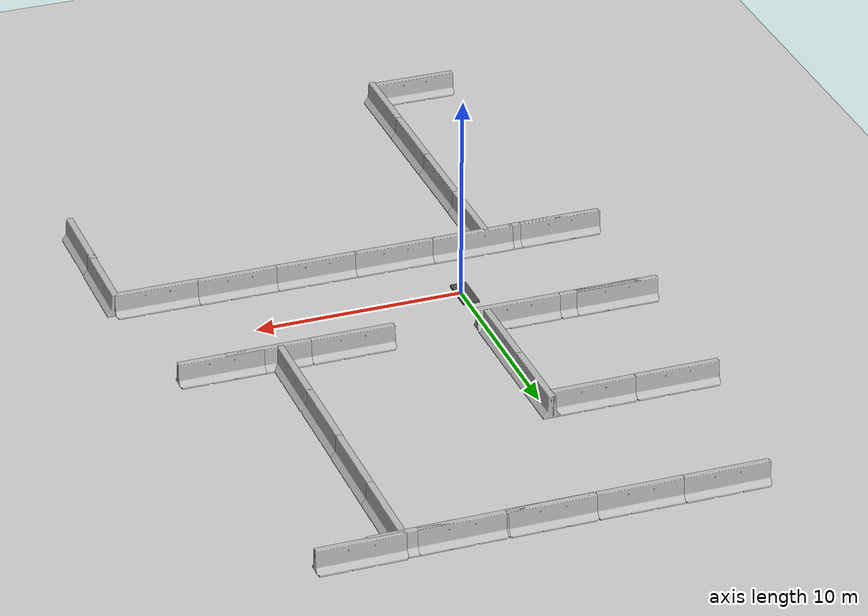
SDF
<sdf version="1.7">
 <world name="default">
  <model name="ground_plane">
   <static>1</static>
   <link name="link">
    <collision name="collision">
     <geometry><plane><normal>0 0 1</normal><size>100 100</size></plane></geometry>
     <surface><friction><ode><mu>100</mu><mu2>50</mu2></ode></friction></surface>
    </collision>
    <visual name="visual">
     <cast_shadows>0</cast_shadows>
     <geometry><plane><normal>0 0 1</normal><size>100 100</size></plane></geometry>
     <material>
      <script><uri>file://media/materials/scripts/gazebo.material</uri><name>Gazebo/Grey</name></script>
     </material>
    </visual>
   </link>
  </model>
  <model name="asphalt_plane">
   <static>1</static>
   <link name="link">
    <collision name="collision"><geometry><box><size>0.799213 1.82438 0.1</size></box></geometry></collision>
    <visual name="visual">
     <cast_shadows>0</cast_shadows>
     <geometry><box><size>0.799213 1.82438 0.1</size></box></geometry>
     <material>
      <script>
       <uri>model://asphalt_plane/materials/scripts</uri>
       <uri>model://asphalt_plane/materials/textures</uri>
       <name>vrc/asphalt</name>
      </script>
     </material>
    </visual>
   </link>
   <pose>-0.129245 0.109771 0 0 -0 0</pose>
  </model>
  <model name="jersey_barrier_clone">
   <static>1</static>
   <link name="link">
    <visual name="visual">
     <geometry><mesh><uri>model://jersey_barrier/meshes/jersey_barrier.dae</uri></mesh></geometry>
    </visual>
    <collision name="upright">
     <pose>0 0 0.5715 0 -0 0</pose>
     <geometry><box><size>4.06542 0.3063 1.143</size></box></geometry>
    </collision>
    <collision name="base">
     <pose>0 0 0.032258 0 -0 0</pose>
     <geometry><box><size>4.06542 0.8107 0.064516</size></box></geometry>
    </collision>
    <collision name="base2">
     <pose>0 0 0.1 0 -0 0</pose>
     <geometry><box><size>4.06542 0.65 0.1</size></box></geometry>
    </collision>
    <collision name="base3">
     <pose>0 0 0.2 0 -0 0</pose>
     <geometry><box><size>4.06542 0.5 0.1</size></box></geometry>
    </collision>
    <collision name="left-angle">
     <pose>0 -0.224 0.2401 0.9 -0 0</pose>
     <geometry><box><size>4.06542 0.5 0.064516</size></box></geometry>
    </collision>
    <collision name="right-angle">
     <pose>0 0.224 0.2401 -0.9 0 0</pose>
     <geometry><box><size>4.06542 0.5 0.064516</size></box></geometry>
    </collision>
   </link>
   <pose>-5.58054 -3.36857 0 0 -0 0</pose>
  </model>
  <model name="jersey_barrier_clone_0">
   <static>1</static>
   <link name="link">
    <visual name="visual">
     <geometry><mesh><uri>model://jersey_barrier/meshes/jersey_barrier.dae</uri></mesh></geometry>
    </visual>
    <collision name="upright">
     <pose>0 0 0.5715 0 -0 0</pose>
     <geometry><box><size>4.06542 0.3063 1.143</size></box></geometry>
    </collision>
    <collision name="base">
     <pose>0 0 0.032258 0 -0 0</pose>
     <geometry><box><size>4.06542 0.8107 0.064516</size></box></geometry>
    </collision>
    <collision name="base2">
     <pose>0 0 0.1 0 -0 0</pose>
     <geometry><box><size>4.06542 0.65 0.1</size></box></geometry>
    </collision>
    <collision name="base3">
     <pose>0 0 0.2 0 -0 0</pose>
     <geometry><box><size>4.06542 0.5 0.1</size></box></geometry>
    </collision>
    <collision name="left-angle">
     <pose>0 -0.224 0.2401 0.9 -0 0</pose>
     <geometry><box><size>4.06542 0.5 0.064516</size></box></geometry>
    </collision>
    <collision name="right-angle">
     <pose>0 0.224 0.2401 -0.9 0 0</pose>
     <geometry><box><size>4.06542 0.5 0.064516</size></box></geometry>
    </collision>
   </link>
   <pose>-1.76649 -3.34936 0 0 -0 0</pose>
  </model>
  <model name="jersey_barrier_clone_0_clone_1">
   <static>1</static>
   <link name="link">
    <visual name="visual">
     <geometry><mesh><uri>model://jersey_barrier/meshes/jersey_barrier.dae</uri></mesh></geometry>
    </visual>
    <collision name="upright">
     <pose>0 0 0.5715 0 -0 0</pose>
     <geometry><box><size>4.06542 0.3063 1.143</size></box></geometry>
    </collision>
    <collision name="base">
     <pose>0 0 0.032258 0 -0 0</pose>
     <geometry><box><size>4.06542 0.8107 0.064516</size></box></geometry>
    </collision>
    <collision name="base2">
     <pose>0 0 0.1 0 -0 0</pose>
     <geometry><box><size>4.06542 0.65 0.1</size></box></geometry>
    </collision>
    <collision name="base3">
     <pose>0 0 0.2 0 -0 0</pose>
     <geometry><box><size>4.06542 0.5 0.1</size></box></geometry>
    </collision>
    <collision name="left-angle">
     <pose>0 -0.224 0.2401 0.9 -0 0</pose>
     <geometry><box><size>4.06542 0.5 0.064516</size></box></geometry>
    </collision>
    <collision name="right-angle">
     <pose>0 0.224 0.2401 -0.9 0 0</pose>
     <geometry><box><size>4.06542 0.5 0.064516</size></box></geometry>
    </collision>
   </link>
   <pose>2.09018 -3.3606 0 0 -0 0</pose>
  </model>
  <model name="jersey_barrier_clone_0_clone_2">
   <static>1</static>
   <link name="link">
    <visual name="visual">
     <geometry><mesh><uri>model://jersey_barrier/meshes/jersey_barrier.dae</uri></mesh></geometry>
    </visual>
    <collision name="upright">
     <pose>0 0 0.5715 0 -0 0</pose>
     <geometry><box><size>4.06542 0.3063 1.143</size></box></geometry>
    </collision>
    <collision name="base">
     <pose>0 0 0.032258 0 -0 0</pose>
     <geometry><box><size>4.06542 0.8107 0.064516</size></box></geometry>
    </collision>
    <collision name="base2">
     <pose>0 0 0.1 0 -0 0</pose>
     <geometry><box><size>4.06542 0.65 0.1</size></box></geometry>
    </collision>
    <collision name="base3">
     <pose>0 0 0.2 0 -0 0</pose>
     <geometry><box><size>4.06542 0.5 0.1</size></box></geometry>
    </collision>
    <collision name="left-angle">
     <pose>0 -0.224 0.2401 0.9 -0 0</pose>
     <geometry><box><size>4.06542 0.5 0.064516</size></box></geometry>
    </collision>
    <collision name="right-angle">
     <pose>0 0.224 0.2401 -0.9 0 0</pose>
     <geometry><box><size>4.06542 0.5 0.064516</size></box></geometry>
    </collision>
   </link>
   <pose>5.95957 -3.36203 0 0 -0 0</pose>
  </model>
  <model name="jersey_barrier_clone_0_clone_3">
   <static>1</static>
   <link name="link">
    <visual name="visual">
     <geometry><mesh><uri>model://jersey_barrier/meshes/jersey_barrier.dae</uri></mesh></geometry>
    </visual>
    <collision name="upright">
     <pose>0 0 0.5715 0 -0 0</pose>
     <geometry><box><size>4.06542 0.3063 1.143</size></box></geometry>
    </collision>
    <collision name="base">
     <pose>0 0 0.032258 0 -0 0</pose>
     <geometry><box><size>4.06542 0.8107 0.064516</size></box></geometry>
    </collision>
    <collision name="base2">
     <pose>0 0 0.1 0 -0 0</pose>
     <geometry><box><size>4.06542 0.65 0.1</size></box></geometry>
    </collision>
    <collision name="base3">
     <pose>0 0 0.2 0 -0 0</pose>
     <geometry><box><size>4.06542 0.5 0.1</size></box></geometry>
    </collision>
    <collision name="left-angle">
     <pose>0 -0.224 0.2401 0.9 -0 0</pose>
     <geometry><box><size>4.06542 0.5 0.064516</size></box></geometry>
    </collision>
    <collision name="right-angle">
     <pose>0 0.224 0.2401 -0.9 0 0</pose>
     <geometry><box><size>4.06542 0.5 0.064516</size></box></geometry>
    </collision>
   </link>
   <pose>9.75739 -3.36455 0 0 -0 0</pose>
  </model>
  <model name="jersey_barrier_clone_0_clone_4">
   <static>1</static>
   <link name="link">
    <visual name="visual">
     <geometry><mesh><uri>model://jersey_barrier/meshes/jersey_barrier.dae</uri></mesh></geometry>
    </visual>
    <collision name="upright">
     <pose>0 0 0.5715 0 -0 0</pose>
     <geometry><box><size>4.06542 0.3063 1.143</size></box></geometry>
    </collision>
    <collision name="base">
     <pose>0 0 0.032258 0 -0 0</pose>
     <geometry><box><size>4.06542 0.8107 0.064516</size></box></geometry>
    </collision>
    <collision name="base2">
     <pose>0 0 0.1 0 -0 0</pose>
     <geometry><box><size>4.06542 0.65 0.1</size></box></geometry>
    </collision>
    <collision name="base3">
     <pose>0 0 0.2 0 -0 0</pose>
     <geometry><box><size>4.06542 0.5 0.1</size></box></geometry>
    </collision>
    <collision name="left-angle">
     <pose>0 -0.224 0.2401 0.9 -0 0</pose>
     <geometry><box><size>4.06542 0.5 0.064516</size></box></geometry>
    </collision>
    <collision name="right-angle">
     <pose>0 0.224 0.2401 -0.9 0 0</pose>
     <geometry><box><size>4.06542 0.5 0.064516</size></box></geometry>
    </collision>
   </link>
   <pose>13.7348 -3.39973 0 0 -0 0</pose>
  </model>
  <model name="jersey_barrier_clone_0_clone_0_clone_0_clone">
   <static>1</static>
   <link name="link">
    <visual name="visual">
     <geometry><mesh><uri>model://jersey_barrier/meshes/jersey_barrier.dae</uri></mesh></geometry>
    </visual>
    <collision name="upright">
     <pose>0 0 0.5715 0 -0 0</pose>
     <geometry><box><size>4.06542 0.3063 1.143</size></box></geometry>
    </collision>
    <collision name="base">
     <pose>0 0 0.032258 0 -0 0</pose>
     <geometry><box><size>4.06542 0.8107 0.064516</size></box></geometry>
    </collision>
    <collision name="base2">
     <pose>0 0 0.1 0 -0 0</pose>
     <geometry><box><size>4.06542 0.65 0.1</size></box></geometry>
    </collision>
    <collision name="base3">
     <pose>0 0 0.2 0 -0 0</pose>
     <geometry><box><size>4.06542 0.5 0.1</size></box></geometry>
    </collision>
    <collision name="left-angle">
     <pose>0 -0.224 0.2401 0.9 -0 0</pose>
     <geometry><box><size>4.06542 0.5 0.064516</size></box></geometry>
    </collision>
    <collision name="right-angle">
     <pose>0 0.224 0.2401 -0.9 0 0</pose>
     <geometry><box><size>4.06542 0.5 0.064516</size></box></geometry>
    </collision>
   </link>
   <pose>15.7344 -8.96603 0 0 0 -1.56339</pose>
  </model>
  <model name="jersey_barrier_clone_0_clone_0_clone_0_clone_0">
   <static>1</static>
   <link name="link">
    <visual name="visual">
     <geometry><mesh><uri>model://jersey_barrier/meshes/jersey_barrier.dae</uri></mesh></geometry>
    </visual>
    <collision name="upright">
     <pose>0 0 0.5715 0 -0 0</pose>
     <geometry><box><size>4.06542 0.3063 1.143</size></box></geometry>
    </collision>
    <collision name="base">
     <pose>0 0 0.032258 0 -0 0</pose>
     <geometry><box><size>4.06542 0.8107 0.064516</size></box></geometry>
    </collision>
    <collision name="base2">
     <pose>0 0 0.1 0 -0 0</pose>
     <geometry><box><size>4.06542 0.65 0.1</size></box></geometry>
    </collision>
    <collision name="base3">
     <pose>0 0 0.2 0 -0 0</pose>
     <geometry><box><size>4.06542 0.5 0.1</size></box></geometry>
    </collision>
    <collision name="left-angle">
     <pose>0 -0.224 0.2401 0.9 -0 0</pose>
     <geometry><box><size>4.06542 0.5 0.064516</size></box></geometry>
    </collision>
    <collision name="right-angle">
     <pose>0 0.224 0.2401 -0.9 0 0</pose>
     <geometry><box><size>4.06542 0.5 0.064516</size></box></geometry>
    </collision>
   </link>
   <pose>15.7362 -5.33956 0 0 0 -1.56339</pose>
  </model>
  <model name="jersey_barrier_clone_0_clone_4_clone_7_clone_3_clone">
   <static>1</static>
   <link name="link">
    <visual name="visual">
     <geometry><mesh><uri>model://jersey_barrier/meshes/jersey_barrier.dae</uri></mesh></geometry>
    </visual>
    <collision name="upright">
     <pose>0 0 0.5715 0 -0 0</pose>
     <geometry><box><size>4.06542 0.3063 1.143</size></box></geometry>
    </collision>
    <collision name="base">
     <pose>0 0 0.032258 0 -0 0</pose>
     <geometry><box><size>4.06542 0.8107 0.064516</size></box></geometry>
    </collision>
    <collision name="base2">
     <pose>0 0 0.1 0 -0 0</pose>
     <geometry><box><size>4.06542 0.65 0.1</size></box></geometry>
    </collision>
    <collision name="base3">
     <pose>0 0 0.2 0 -0 0</pose>
     <geometry><box><size>4.06542 0.5 0.1</size></box></geometry>
    </collision>
    <collision name="left-angle">
     <pose>0 -0.224 0.2401 0.9 -0 0</pose>
     <geometry><box><size>4.06542 0.5 0.064516</size></box></geometry>
    </collision>
    <collision name="right-angle">
     <pose>0 0.224 0.2401 -0.9 0 0</pose>
     <geometry><box><size>4.06542 0.5 0.064516</size></box></geometry>
    </collision>
   </link>
   <pose>12.7848 3.42094 0 0 -0 0</pose>
  </model>
  <model name="jersey_barrier_clone_0_clone_4_clone_7_clone_3_clone_clone">
   <static>1</static>
   <link name="link">
    <visual name="visual">
     <geometry><mesh><uri>model://jersey_barrier/meshes/jersey_barrier.dae</uri></mesh></geometry>
    </visual>
    <collision name="upright">
     <pose>0 0 0.5715 0 -0 0</pose>
     <geometry><box><size>4.06542 0.3063 1.143</size></box></geometry>
    </collision>
    <collision name="base">
     <pose>0 0 0.032258 0 -0 0</pose>
     <geometry><box><size>4.06542 0.8107 0.064516</size></box></geometry>
    </collision>
    <collision name="base2">
     <pose>0 0 0.1 0 -0 0</pose>
     <geometry><box><size>4.06542 0.65 0.1</size></box></geometry>
    </collision>
    <collision name="base3">
     <pose>0 0 0.2 0 -0 0</pose>
     <geometry><box><size>4.06542 0.5 0.1</size></box></geometry>
    </collision>
    <collision name="left-angle">
     <pose>0 -0.224 0.2401 0.9 -0 0</pose>
     <geometry><box><size>4.06542 0.5 0.064516</size></box></geometry>
    </collision>
    <collision name="right-angle">
     <pose>0 0.224 0.2401 -0.9 0 0</pose>
     <geometry><box><size>4.06542 0.5 0.064516</size></box></geometry>
    </collision>
   </link>
   <pose>10.5472 3.41426 0 0 -0 0</pose>
  </model>
  <model name="jersey_barrier_clone_0_clone_4_clone_7_clone_3_clone_clone_0">
   <static>1</static>
   <link name="link">
    <visual name="visual">
     <geometry><mesh><uri>model://jersey_barrier/meshes/jersey_barrier.dae</uri></mesh></geometry>
    </visual>
    <collision name="upright">
     <pose>0 0 0.5715 0 -0 0</pose>
     <geometry><box><size>4.06542 0.3063 1.143</size></box></geometry>
    </collision>
    <collision name="base">
     <pose>0 0 0.032258 0 -0 0</pose>
     <geometry><box><size>4.06542 0.8107 0.064516</size></box></geometry>
    </collision>
    <collision name="base2">
     <pose>0 0 0.1 0 -0 0</pose>
     <geometry><box><size>4.06542 0.65 0.1</size></box></geometry>
    </collision>
    <collision name="base3">
     <pose>0 0 0.2 0 -0 0</pose>
     <geometry><box><size>4.06542 0.5 0.1</size></box></geometry>
    </collision>
    <collision name="left-angle">
     <pose>0 -0.224 0.2401 0.9 -0 0</pose>
     <geometry><box><size>4.06542 0.5 0.064516</size></box></geometry>
    </collision>
    <collision name="right-angle">
     <pose>0 0.224 0.2401 -0.9 0 0</pose>
     <geometry><box><size>4.06542 0.5 0.064516</size></box></geometry>
    </collision>
   </link>
   <pose>6.54684 3.40747 0 0 -0 0</pose>
  </model>
  <model name="jersey_barrier_clone_0_clone_4_clone_7_clone_3_clone_clone_2">
   <static>1</static>
   <link name="link">
    <visual name="visual">
     <geometry><mesh><uri>model://jersey_barrier/meshes/jersey_barrier.dae</uri></mesh></geometry>
    </visual>
    <collision name="upright">
     <pose>0 0 0.5715 0 -0 0</pose>
     <geometry><box><size>4.06542 0.3063 1.143</size></box></geometry>
    </collision>
    <collision name="base">
     <pose>0 0 0.032258 0 -0 0</pose>
     <geometry><box><size>4.06542 0.8107 0.064516</size></box></geometry>
    </collision>
    <collision name="base2">
     <pose>0 0 0.1 0 -0 0</pose>
     <geometry><box><size>4.06542 0.65 0.1</size></box></geometry>
    </collision>
    <collision name="base3">
     <pose>0 0 0.2 0 -0 0</pose>
     <geometry><box><size>4.06542 0.5 0.1</size></box></geometry>
    </collision>
    <collision name="left-angle">
     <pose>0 -0.224 0.2401 0.9 -0 0</pose>
     <geometry><box><size>4.06542 0.5 0.064516</size></box></geometry>
    </collision>
    <collision name="right-angle">
     <pose>0 0.224 0.2401 -0.9 0 0</pose>
     <geometry><box><size>4.06542 0.5 0.064516</size></box></geometry>
    </collision>
   </link>
   <pose>-1.52166 3.39925 0 0 -0 0</pose>
  </model>
  <model name="jersey_barrier_clone_0_clone_4_clone_7_clone_3_clone_clone_3">
   <static>1</static>
   <link name="link">
    <visual name="visual">
     <geometry><mesh><uri>model://jersey_barrier/meshes/jersey_barrier.dae</uri></mesh></geometry>
    </visual>
    <collision name="upright">
     <pose>0 0 0.5715 0 -0 0</pose>
     <geometry><box><size>4.06542 0.3063 1.143</size></box></geometry>
    </collision>
    <collision name="base">
     <pose>0 0 0.032258 0 -0 0</pose>
     <geometry><box><size>4.06542 0.8107 0.064516</size></box></geometry>
    </collision>
    <collision name="base2">
     <pose>0 0 0.1 0 -0 0</pose>
     <geometry><box><size>4.06542 0.65 0.1</size></box></geometry>
    </collision>
    <collision name="base3">
     <pose>0 0 0.2 0 -0 0</pose>
     <geometry><box><size>4.06542 0.5 0.1</size></box></geometry>
    </collision>
    <collision name="left-angle">
     <pose>0 -0.224 0.2401 0.9 -0 0</pose>
     <geometry><box><size>4.06542 0.5 0.064516</size></box></geometry>
    </collision>
    <collision name="right-angle">
     <pose>0 0.224 0.2401 -0.9 0 0</pose>
     <geometry><box><size>4.06542 0.5 0.064516</size></box></geometry>
    </collision>
   </link>
   <pose>-5.54932 3.39943 0 0 -0 0</pose>
  </model>
  <model name="jersey_barrier_clone_0_clone_4_clone_7_clone_3_clone_clone_4">
   <static>1</static>
   <link name="link">
    <visual name="visual">
     <geometry><mesh><uri>model://jersey_barrier/meshes/jersey_barrier.dae</uri></mesh></geometry>
    </visual>
    <collision name="upright">
     <pose>0 0 0.5715 0 -0 0</pose>
     <geometry><box><size>4.06542 0.3063 1.143</size></box></geometry>
    </collision>
    <collision name="base">
     <pose>0 0 0.032258 0 -0 0</pose>
     <geometry><box><size>4.06542 0.8107 0.064516</size></box></geometry>
    </collision>
    <collision name="base2">
     <pose>0 0 0.1 0 -0 0</pose>
     <geometry><box><size>4.06542 0.65 0.1</size></box></geometry>
    </collision>
    <collision name="base3">
     <pose>0 0 0.2 0 -0 0</pose>
     <geometry><box><size>4.06542 0.5 0.1</size></box></geometry>
    </collision>
    <collision name="left-angle">
     <pose>0 -0.224 0.2401 0.9 -0 0</pose>
     <geometry><box><size>4.06542 0.5 0.064516</size></box></geometry>
    </collision>
    <collision name="right-angle">
     <pose>0 0.224 0.2401 -0.9 0 0</pose>
     <geometry><box><size>4.06542 0.5 0.064516</size></box></geometry>
    </collision>
   </link>
   <pose>-6.36641 3.4134 0 0 -0 0</pose>
  </model>
  <model name="jersey_barrier_clone_0_clone_0_clone_0_clone_0_clone_2_clone_clone_clone_clone">
   <static>1</static>
   <link name="link">
    <visual name="visual">
     <geometry><mesh><uri>model://jersey_barrier/meshes/jersey_barrier.dae</uri></mesh></geometry>
    </visual>
    <collision name="upright">
     <pose>0 0 0.5715 0 -0 0</pose>
     <geometry><box><size>4.06542 0.3063 1.143</size></box></geometry>
    </collision>
    <collision name="base">
     <pose>0 0 0.032258 0 -0 0</pose>
     <geometry><box><size>4.06542 0.8107 0.064516</size></box></geometry>
    </collision>
    <collision name="base2">
     <pose>0 0 0.1 0 -0 0</pose>
     <geometry><box><size>4.06542 0.65 0.1</size></box></geometry>
    </collision>
    <collision name="base3">
     <pose>0 0 0.2 0 -0 0</pose>
     <geometry><box><size>4.06542 0.5 0.1</size></box></geometry>
    </collision>
    <collision name="left-angle">
     <pose>0 -0.224 0.2401 0.9 -0 0</pose>
     <geometry><box><size>4.06542 0.5 0.064516</size></box></geometry>
    </collision>
    <collision name="right-angle">
     <pose>0 0.224 0.2401 -0.9 0 0</pose>
     <geometry><box><size>4.06542 0.5 0.064516</size></box></geometry>
    </collision>
   </link>
   <pose>9.97095 5.47957 0 0 0 -1.56339</pose>
  </model>
  <model name="jersey_barrier_clone_0_clone_0_clone_0_clone_0_clone_2_clone_clone_clone_clone_0">
   <static>1</static>
   <link name="link">
    <visual name="visual">
     <geometry><mesh><uri>model://jersey_barrier/meshes/jersey_barrier.dae</uri></mesh></geometry>
    </visual>
    <collision name="upright">
     <pose>0 0 0.5715 0 -0 0</pose>
     <geometry><box><size>4.06542 0.3063 1.143</size></box></geometry>
    </collision>
    <collision name="base">
     <pose>0 0 0.032258 0 -0 0</pose>
     <geometry><box><size>4.06542 0.8107 0.064516</size></box></geometry>
    </collision>
    <collision name="base2">
     <pose>0 0 0.1 0 -0 0</pose>
     <geometry><box><size>4.06542 0.65 0.1</size></box></geometry>
    </collision>
    <collision name="base3">
     <pose>0 0 0.2 0 -0 0</pose>
     <geometry><box><size>4.06542 0.5 0.1</size></box></geometry>
    </collision>
    <collision name="left-angle">
     <pose>0 -0.224 0.2401 0.9 -0 0</pose>
     <geometry><box><size>4.06542 0.5 0.064516</size></box></geometry>
    </collision>
    <collision name="right-angle">
     <pose>0 0.224 0.2401 -0.9 0 0</pose>
     <geometry><box><size>4.06542 0.5 0.064516</size></box></geometry>
    </collision>
   </link>
   <pose>9.93838 9.5245 0 0 0 -1.56339</pose>
  </model>
  <model name="jersey_barrier_clone_0_clone_0_clone_0_clone_0_clone_2_clone_clone_clone_clone_0_clone">
   <static>1</static>
   <link name="link">
    <visual name="visual">
     <geometry><mesh><uri>model://jersey_barrier/meshes/jersey_barrier.dae</uri></mesh></geometry>
    </visual>
    <collision name="upright">
     <pose>0 0 0.5715 0 -0 0</pose>
     <geometry><box><size>4.06542 0.3063 1.143</size></box></geometry>
    </collision>
    <collision name="base">
     <pose>0 0 0.032258 0 -0 0</pose>
     <geometry><box><size>4.06542 0.8107 0.064516</size></box></geometry>
    </collision>
    <collision name="base2">
     <pose>0 0 0.1 0 -0 0</pose>
     <geometry><box><size>4.06542 0.65 0.1</size></box></geometry>
    </collision>
    <collision name="base3">
     <pose>0 0 0.2 0 -0 0</pose>
     <geometry><box><size>4.06542 0.5 0.1</size></box></geometry>
    </collision>
    <collision name="left-angle">
     <pose>0 -0.224 0.2401 0.9 -0 0</pose>
     <geometry><box><size>4.06542 0.5 0.064516</size></box></geometry>
    </collision>
    <collision name="right-angle">
     <pose>0 0.224 0.2401 -0.9 0 0</pose>
     <geometry><box><size>4.06542 0.5 0.064516</size></box></geometry>
    </collision>
   </link>
   <pose>9.92295 13.5024 0 0 0 -1.56339</pose>
  </model>
  <model name="jersey_barrier_clone_0_clone_0_clone_0_clone_0_clone_2_clone_clone_clone_clone_0_clone_0">
   <static>1</static>
   <link name="link">
    <visual name="visual">
     <geometry><mesh><uri>model://jersey_barrier/meshes/jersey_barrier.dae</uri></mesh></geometry>
    </visual>
    <collision name="upright">
     <pose>0 0 0.5715 0 -0 0</pose>
     <geometry><box><size>4.06542 0.3063 1.143</size></box></geometry>
    </collision>
    <collision name="base">
     <pose>0 0 0.032258 0 -0 0</pose>
     <geometry><box><size>4.06542 0.8107 0.064516</size></box></geometry>
    </collision>
    <collision name="base2">
     <pose>0 0 0.1 0 -0 0</pose>
     <geometry><box><size>4.06542 0.65 0.1</size></box></geometry>
    </collision>
    <collision name="base3">
     <pose>0 0 0.2 0 -0 0</pose>
     <geometry><box><size>4.06542 0.5 0.1</size></box></geometry>
    </collision>
    <collision name="left-angle">
     <pose>0 -0.224 0.2401 0.9 -0 0</pose>
     <geometry><box><size>4.06542 0.5 0.064516</size></box></geometry>
    </collision>
    <collision name="right-angle">
     <pose>0 0.224 0.2401 -0.9 0 0</pose>
     <geometry><box><size>4.06542 0.5 0.064516</size></box></geometry>
    </collision>
   </link>
   <pose>9.89819 17.5051 0 0 0 -1.56339</pose>
  </model>
  <model name="jersey_barrier_clone_0_clone_4_clone_7_clone_2_clone_clone_clone">
   <static>1</static>
   <link name="link">
    <visual name="visual">
     <geometry><mesh><uri>model://jersey_barrier/meshes/jersey_barrier.dae</uri></mesh></geometry>
    </visual>
    <collision name="upright">
     <pose>0 0 0.5715 0 -0 0</pose>
     <geometry><box><size>4.06542 0.3063 1.143</size></box></geometry>
    </collision>
    <collision name="base">
     <pose>0 0 0.032258 0 -0 0</pose>
     <geometry><box><size>4.06542 0.8107 0.064516</size></box></geometry>
    </collision>
    <collision name="base2">
     <pose>0 0 0.1 0 -0 0</pose>
     <geometry><box><size>4.06542 0.65 0.1</size></box></geometry>
    </collision>
    <collision name="base3">
     <pose>0 0 0.2 0 -0 0</pose>
     <geometry><box><size>4.06542 0.5 0.1</size></box></geometry>
    </collision>
    <collision name="left-angle">
     <pose>0 -0.224 0.2401 0.9 -0 0</pose>
     <geometry><box><size>4.06542 0.5 0.064516</size></box></geometry>
    </collision>
    <collision name="right-angle">
     <pose>0 0.224 0.2401 -0.9 0 0</pose>
     <geometry><box><size>4.06542 0.5 0.064516</size></box></geometry>
    </collision>
   </link>
   <pose>11.7953 19.676 0 0 -0 0</pose>
  </model>
  <model name="jersey_barrier_clone_0_clone_0_clone_0_clone_0_clone_2_clone_clone_clone_clone_clone">
   <static>1</static>
   <link name="link">
    <visual name="visual">
     <geometry><mesh><uri>model://jersey_barrier/meshes/jersey_barrier.dae</uri></mesh></geometry>
    </visual>
    <collision name="upright">
     <pose>0 0 0.5715 0 -0 0</pose>
     <geometry><box><size>4.06542 0.3063 1.143</size></box></geometry>
    </collision>
    <collision name="base">
     <pose>0 0 0.032258 0 -0 0</pose>
     <geometry><box><size>4.06542 0.8107 0.064516</size></box></geometry>
    </collision>
    <collision name="base2">
     <pose>0 0 0.1 0 -0 0</pose>
     <geometry><box><size>4.06542 0.65 0.1</size></box></geometry>
    </collision>
    <collision name="base3">
     <pose>0 0 0.2 0 -0 0</pose>
     <geometry><box><size>4.06542 0.5 0.1</size></box></geometry>
    </collision>
    <collision name="left-angle">
     <pose>0 -0.224 0.2401 0.9 -0 0</pose>
     <geometry><box><size>4.06542 0.5 0.064516</size></box></geometry>
    </collision>
    <collision name="right-angle">
     <pose>0 0.224 0.2401 -0.9 0 0</pose>
     <geometry><box><size>4.06542 0.5 0.064516</size></box></geometry>
    </collision>
   </link>
   <pose>-2.43372 -5.32735 0 0 0 -1.56339</pose>
  </model>
  <model name="jersey_barrier_clone_0_clone_0_clone_0_clone_0_clone_2_clone_clone_clone_clone_clone_0">
   <static>1</static>
   <link name="link">
    <visual name="visual">
     <geometry><mesh><uri>model://jersey_barrier/meshes/jersey_barrier.dae</uri></mesh></geometry>
    </visual>
    <collision name="upright">
     <pose>0 0 0.5715 0 -0 0</pose>
     <geometry><box><size>4.06542 0.3063 1.143</size></box></geometry>
    </collision>
    <collision name="base">
     <pose>0 0 0.032258 0 -0 0</pose>
     <geometry><box><size>4.06542 0.8107 0.064516</size></box></geometry>
    </collision>
    <collision name="base2">
     <pose>0 0 0.1 0 -0 0</pose>
     <geometry><box><size>4.06542 0.65 0.1</size></box></geometry>
    </collision>
    <collision name="base3">
     <pose>0 0 0.2 0 -0 0</pose>
     <geometry><box><size>4.06542 0.5 0.1</size></box></geometry>
    </collision>
    <collision name="left-angle">
     <pose>0 -0.224 0.2401 0.9 -0 0</pose>
     <geometry><box><size>4.06542 0.5 0.064516</size></box></geometry>
    </collision>
    <collision name="right-angle">
     <pose>0 0.224 0.2401 -0.9 0 0</pose>
     <geometry><box><size>4.06542 0.5 0.064516</size></box></geometry>
    </collision>
   </link>
   <pose>-2.4129 -9.31924 0 0 0 -1.56339</pose>
  </model>
  <model name="jersey_barrier_clone_0_clone_0_clone_0_clone_0_clone_2_clone_clone_clone_clone_clone_1">
   <static>1</static>
   <link name="link">
    <visual name="visual">
     <geometry><mesh><uri>model://jersey_barrier/meshes/jersey_barrier.dae</uri></mesh></geometry>
    </visual>
    <collision name="upright">
     <pose>0 0 0.5715 0 -0 0</pose>
     <geometry><box><size>4.06542 0.3063 1.143</size></box></geometry>
    </collision>
    <collision name="base">
     <pose>0 0 0.032258 0 -0 0</pose>
     <geometry><box><size>4.06542 0.8107 0.064516</size></box></geometry>
    </collision>
    <collision name="base2">
     <pose>0 0 0.1 0 -0 0</pose>
     <geometry><box><size>4.06542 0.65 0.1</size></box></geometry>
    </collision>
    <collision name="base3">
     <pose>0 0 0.2 0 -0 0</pose>
     <geometry><box><size>4.06542 0.5 0.1</size></box></geometry>
    </collision>
    <collision name="left-angle">
     <pose>0 -0.224 0.2401 0.9 -0 0</pose>
     <geometry><box><size>4.06542 0.5 0.064516</size></box></geometry>
    </collision>
    <collision name="right-angle">
     <pose>0 0.224 0.2401 -0.9 0 0</pose>
     <geometry><box><size>4.06542 0.5 0.064516</size></box></geometry>
    </collision>
   </link>
   <pose>-2.38212 -13.2949 0 0 0 -1.56339</pose>
  </model>
  <model name="jersey_barrier_clone_0_clone_0_clone_0_clone_0_clone_2_clone_clone_clone_clone_clone_2">
   <static>1</static>
   <link name="link">
    <visual name="visual">
     <geometry><mesh><uri>model://jersey_barrier/meshes/jersey_barrier.dae</uri></mesh></geometry>
    </visual>
    <collision name="upright">
     <pose>0 0 0.5715 0 -0 0</pose>
     <geometry><box><size>4.06542 0.3063 1.143</size></box></geometry>
    </collision>
    <collision name="base">
     <pose>0 0 0.032258 0 -0 0</pose>
     <geometry><box><size>4.06542 0.8107 0.064516</size></box></geometry>
    </collision>
    <collision name="base2">
     <pose>0 0 0.1 0 -0 0</pose>
     <geometry><box><size>4.06542 0.65 0.1</size></box></geometry>
    </collision>
    <collision name="base3">
     <pose>0 0 0.2 0 -0 0</pose>
     <geometry><box><size>4.06542 0.5 0.1</size></box></geometry>
    </collision>
    <collision name="left-angle">
     <pose>0 -0.224 0.2401 0.9 -0 0</pose>
     <geometry><box><size>4.06542 0.5 0.064516</size></box></geometry>
    </collision>
    <collision name="right-angle">
     <pose>0 0.224 0.2401 -0.9 0 0</pose>
     <geometry><box><size>4.06542 0.5 0.064516</size></box></geometry>
    </collision>
   </link>
   <pose>-2.35235 -17.2891 0 0 0 -1.56339</pose>
  </model>
  <model name="jersey_barrier_clone_clone">
   <static>1</static>
   <link name="link">
    <visual name="visual">
     <geometry><mesh><uri>model://jersey_barrier/meshes/jersey_barrier.dae</uri></mesh></geometry>
    </visual>
    <collision name="upright">
     <pose>0 0 0.5715 0 -0 0</pose>
     <geometry><box><size>4.06542 0.3063 1.143</size></box></geometry>
    </collision>
    <collision name="base">
     <pose>0 0 0.032258 0 -0 0</pose>
     <geometry><box><size>4.06542 0.8107 0.064516</size></box></geometry>
    </collision>
    <collision name="base2">
     <pose>0 0 0.1 0 -0 0</pose>
     <geometry><box><size>4.06542 0.65 0.1</size></box></geometry>
    </collision>
    <collision name="base3">
     <pose>0 0 0.2 0 -0 0</pose>
     <geometry><box><size>4.06542 0.5 0.1</size></box></geometry>
    </collision>
    <collision name="left-angle">
     <pose>0 -0.224 0.2401 0.9 -0 0</pose>
     <geometry><box><size>4.06542 0.5 0.064516</size></box></geometry>
    </collision>
    <collision name="right-angle">
     <pose>0 0.224 0.2401 -0.9 0 0</pose>
     <geometry><box><size>4.06542 0.5 0.064516</size></box></geometry>
    </collision>
   </link>
   <pose>-4.49564 -19.0317 0 0 -0 0</pose>
  </model>
  <model name="jersey_barrier_clone_2_clone_0">
   <static>1</static>
   <link name="link">
    <visual name="visual">
     <geometry><mesh><uri>model://jersey_barrier/meshes/jersey_barrier.dae</uri></mesh></geometry>
    </visual>
    <collision name="upright">
     <pose>0 0 0.5715 0 -0 0</pose>
     <geometry><box><size>4.06542 0.3063 1.143</size></box></geometry>
    </collision>
    <collision name="base">
     <pose>0 0 0.032258 0 -0 0</pose>
     <geometry><box><size>4.06542 0.8107 0.064516</size></box></geometry>
    </collision>
    <collision name="base2">
     <pose>0 0 0.1 0 -0 0</pose>
     <geometry><box><size>4.06542 0.65 0.1</size></box></geometry>
    </collision>
    <collision name="base3">
     <pose>0 0 0.2 0 -0 0</pose>
     <geometry><box><size>4.06542 0.5 0.1</size></box></geometry>
    </collision>
    <collision name="left-angle">
     <pose>0 -0.224 0.2401 0.9 -0 0</pose>
     <geometry><box><size>4.06542 0.5 0.064516</size></box></geometry>
    </collision>
    <collision name="right-angle">
     <pose>0 0.224 0.2401 -0.9 0 0</pose>
     <geometry><box><size>4.06542 0.5 0.064516</size></box></geometry>
    </collision>
   </link>
   <pose>-6.17641 -3.36808 0 0 -0 0</pose>
  </model>
  <model name="jersey_barrier_clone_0_clone_4_clone_7_clone_2_clone_clone_clone_clone_2">
   <static>1</static>
   <link name="link">
    <visual name="visual">
     <geometry><mesh><uri>model://jersey_barrier/meshes/jersey_barrier.dae</uri></mesh></geometry>
    </visual>
    <collision name="upright">
     <pose>0 0 0.5715 0 -0 0</pose>
     <geometry><box><size>4.06542 0.3063 1.143</size></box></geometry>
    </collision>
    <collision name="base">
     <pose>0 0 0.032258 0 -0 0</pose>
     <geometry><box><size>4.06542 0.8107 0.064516</size></box></geometry>
    </collision>
    <collision name="base2">
     <pose>0 0 0.1 0 -0 0</pose>
     <geometry><box><size>4.06542 0.65 0.1</size></box></geometry>
    </collision>
    <collision name="base3">
     <pose>0 0 0.2 0 -0 0</pose>
     <geometry><box><size>4.06542 0.5 0.1</size></box></geometry>
    </collision>
    <collision name="left-angle">
     <pose>0 -0.224 0.2401 0.9 -0 0</pose>
     <geometry><box><size>4.06542 0.5 0.064516</size></box></geometry>
    </collision>
    <collision name="right-angle">
     <pose>0 0.224 0.2401 -0.9 0 0</pose>
     <geometry><box><size>4.06542 0.5 0.064516</size></box></geometry>
    </collision>
   </link>
   <pose>-4.91091 19.6269 0 0 -0 0</pose>
  </model>
  <model name="jersey_barrier_clone_0_clone_4_clone_7_clone_2_clone_clone_clone_clone_3">
   <static>1</static>
   <link name="link">
    <visual name="visual">
     <geometry><mesh><uri>model://jersey_barrier/meshes/jersey_barrier.dae</uri></mesh></geometry>
    </visual>
    <collision name="upright">
     <pose>0 0 0.5715 0 -0 0</pose>
     <geometry><box><size>4.06542 0.3063 1.143</size></box></geometry>
    </collision>
    <collision name="base">
     <pose>0 0 0.032258 0 -0 0</pose>
     <geometry><box><size>4.06542 0.8107 0.064516</size></box></geometry>
    </collision>
    <collision name="base2">
     <pose>0 0 0.1 0 -0 0</pose>
     <geometry><box><size>4.06542 0.65 0.1</size></box></geometry>
    </collision>
    <collision name="base3">
     <pose>0 0 0.2 0 -0 0</pose>
     <geometry><box><size>4.06542 0.5 0.1</size></box></geometry>
    </collision>
    <collision name="left-angle">
     <pose>0 -0.224 0.2401 0.9 -0 0</pose>
     <geometry><box><size>4.06542 0.5 0.064516</size></box></geometry>
    </collision>
    <collision name="right-angle">
     <pose>0 0.224 0.2401 -0.9 0 0</pose>
     <geometry><box><size>4.06542 0.5 0.064516</size></box></geometry>
    </collision>
   </link>
   <pose>-0.896923 19.6024 0 0 -0 0</pose>
  </model>
  <model name="jersey_barrier_clone_0_clone_4_clone_7_clone_2_clone_clone_clone_clone_4">
   <static>1</static>
   <link name="link">
    <visual name="visual">
     <geometry><mesh><uri>model://jersey_barrier/meshes/jersey_barrier.dae</uri></mesh></geometry>
    </visual>
    <collision name="upright">
     <pose>0 0 0.5715 0 -0 0</pose>
     <geometry><box><size>4.06542 0.3063 1.143</size></box></geometry>
    </collision>
    <collision name="base">
     <pose>0 0 0.032258 0 -0 0</pose>
     <geometry><box><size>4.06542 0.8107 0.064516</size></box></geometry>
    </collision>
    <collision name="base2">
     <pose>0 0 0.1 0 -0 0</pose>
     <geometry><box><size>4.06542 0.65 0.1</size></box></geometry>
    </collision>
    <collision name="base3">
     <pose>0 0 0.2 0 -0 0</pose>
     <geometry><box><size>4.06542 0.5 0.1</size></box></geometry>
    </collision>
    <collision name="left-angle">
     <pose>0 -0.224 0.2401 0.9 -0 0</pose>
     <geometry><box><size>4.06542 0.5 0.064516</size></box></geometry>
    </collision>
    <collision name="right-angle">
     <pose>0 0.224 0.2401 -0.9 0 0</pose>
     <geometry><box><size>4.06542 0.5 0.064516</size></box></geometry>
    </collision>
   </link>
   <pose>3.13782 19.6144 0 0 -0 0</pose>
  </model>
  <model name="jersey_barrier_clone_0_clone_4_clone_7_clone_2_clone_clone_clone_clone_5">
   <static>1</static>
   <link name="link">
    <visual name="visual">
     <geometry><mesh><uri>model://jersey_barrier/meshes/jersey_barrier.dae</uri></mesh></geometry>
    </visual>
    <collision name="upright">
     <pose>0 0 0.5715 0 -0 0</pose>
     <geometry><box><size>4.06542 0.3063 1.143</size></box></geometry>
    </collision>
    <collision name="base">
     <pose>0 0 0.032258 0 -0 0</pose>
     <geometry><box><size>4.06542 0.8107 0.064516</size></box></geometry>
    </collision>
    <collision name="base2">
     <pose>0 0 0.1 0 -0 0</pose>
     <geometry><box><size>4.06542 0.65 0.1</size></box></geometry>
    </collision>
    <collision name="base3">
     <pose>0 0 0.2 0 -0 0</pose>
     <geometry><box><size>4.06542 0.5 0.1</size></box></geometry>
    </collision>
    <collision name="left-angle">
     <pose>0 -0.224 0.2401 0.9 -0 0</pose>
     <geometry><box><size>4.06542 0.5 0.064516</size></box></geometry>
    </collision>
    <collision name="right-angle">
     <pose>0 0.224 0.2401 -0.9 0 0</pose>
     <geometry><box><size>4.06542 0.5 0.064516</size></box></geometry>
    </collision>
   </link>
   <pose>3.21948 19.5907 0 0 -0 0</pose>
  </model>
  <model name="jersey_barrier_clone_0_clone_4_clone_7_clone_2_clone_clone_clone_clone_6">
   <static>1</static>
   <link name="link">
    <visual name="visual">
     <geometry><mesh><uri>model://jersey_barrier/meshes/jersey_barrier.dae</uri></mesh></geometry>
    </visual>
    <collision name="upright">
     <pose>0 0 0.5715 0 -0 0</pose>
     <geometry><box><size>4.06542 0.3063 1.143</size></box></geometry>
    </collision>
    <collision name="base">
     <pose>0 0 0.032258 0 -0 0</pose>
     <geometry><box><size>4.06542 0.8107 0.064516</size></box></geometry>
    </collision>
    <collision name="base2">
     <pose>0 0 0.1 0 -0 0</pose>
     <geometry><box><size>4.06542 0.65 0.1</size></box></geometry>
    </collision>
    <collision name="base3">
     <pose>0 0 0.2 0 -0 0</pose>
     <geometry><box><size>4.06542 0.5 0.1</size></box></geometry>
    </collision>
    <collision name="left-angle">
     <pose>0 -0.224 0.2401 0.9 -0 0</pose>
     <geometry><box><size>4.06542 0.5 0.064516</size></box></geometry>
    </collision>
    <collision name="right-angle">
     <pose>0 0.224 0.2401 -0.9 0 0</pose>
     <geometry><box><size>4.06542 0.5 0.064516</size></box></geometry>
    </collision>
   </link>
   <pose>7.25954 19.5936 0 0 -0 0</pose>
  </model>
  <model name="jersey_barrier_clone_0_clone_4_clone_7_clone_2_clone_clone_clone_clone_7">
   <static>1</static>
   <link name="link">
    <visual name="visual">
     <geometry><mesh><uri>model://jersey_barrier/meshes/jersey_barrier.dae</uri></mesh></geometry>
    </visual>
    <collision name="upright">
     <pose>0 0 0.5715 0 -0 0</pose>
     <geometry><box><size>4.06542 0.3063 1.143</size></box></geometry>
    </collision>
    <collision name="base">
     <pose>0 0 0.032258 0 -0 0</pose>
     <geometry><box><size>4.06542 0.8107 0.064516</size></box></geometry>
    </collision>
    <collision name="base2">
     <pose>0 0 0.1 0 -0 0</pose>
     <geometry><box><size>4.06542 0.65 0.1</size></box></geometry>
    </collision>
    <collision name="base3">
     <pose>0 0 0.2 0 -0 0</pose>
     <geometry><box><size>4.06542 0.5 0.1</size></box></geometry>
    </collision>
    <collision name="left-angle">
     <pose>0 -0.224 0.2401 0.9 -0 0</pose>
     <geometry><box><size>4.06542 0.5 0.064516</size></box></geometry>
    </collision>
    <collision name="right-angle">
     <pose>0 0.224 0.2401 -0.9 0 0</pose>
     <geometry><box><size>4.06542 0.5 0.064516</size></box></geometry>
    </collision>
   </link>
   <pose>9.44155 19.5885 0 0 -0 0</pose>
  </model>
  <model name="jersey_barrier_clone_0_clone_0_clone_0_clone_0_clone_2_clone_clone_clone_clone_clone_6">
   <static>1</static>
   <link name="link">
    <visual name="visual">
     <geometry><mesh><uri>model://jersey_barrier/meshes/jersey_barrier.dae</uri></mesh></geometry>
    </visual>
    <collision name="upright">
     <pose>0 0 0.5715 0 -0 0</pose>
     <geometry><box><size>4.06542 0.3063 1.143</size></box></geometry>
    </collision>
    <collision name="base">
     <pose>0 0 0.032258 0 -0 0</pose>
     <geometry><box><size>4.06542 0.8107 0.064516</size></box></geometry>
    </collision>
    <collision name="base2">
     <pose>0 0 0.1 0 -0 0</pose>
     <geometry><box><size>4.06542 0.65 0.1</size></box></geometry>
    </collision>
    <collision name="base3">
     <pose>0 0 0.2 0 -0 0</pose>
     <geometry><box><size>4.06542 0.5 0.1</size></box></geometry>
    </collision>
    <collision name="left-angle">
     <pose>0 -0.224 0.2401 0.9 -0 0</pose>
     <geometry><box><size>4.06542 0.5 0.064516</size></box></geometry>
    </collision>
    <collision name="right-angle">
     <pose>0 0.224 0.2401 -0.9 0 0</pose>
     <geometry><box><size>4.06542 0.5 0.064516</size></box></geometry>
    </collision>
   </link>
   <pose>0.067298 5.60261 0 0 0 -1.56339</pose>
  </model>
  <model name="jersey_barrier_clone_0_clone_0_clone_0_clone_0_clone_2_clone_clone_clone_clone_clone_7">
   <static>1</static>
   <link name="link">
    <visual name="visual">
     <geometry><mesh><uri>model://jersey_barrier/meshes/jersey_barrier.dae</uri></mesh></geometry>
    </visual>
    <collision name="upright">
     <pose>0 0 0.5715 0 -0 0</pose>
     <geometry><box><size>4.06542 0.3063 1.143</size></box></geometry>
    </collision>
    <collision name="base">
     <pose>0 0 0.032258 0 -0 0</pose>
     <geometry><box><size>4.06542 0.8107 0.064516</size></box></geometry>
    </collision>
    <collision name="base2">
     <pose>0 0 0.1 0 -0 0</pose>
     <geometry><box><size>4.06542 0.65 0.1</size></box></geometry>
    </collision>
    <collision name="base3">
     <pose>0 0 0.2 0 -0 0</pose>
     <geometry><box><size>4.06542 0.5 0.1</size></box></geometry>
    </collision>
    <collision name="left-angle">
     <pose>0 -0.224 0.2401 0.9 -0 0</pose>
     <geometry><box><size>4.06542 0.5 0.064516</size></box></geometry>
    </collision>
    <collision name="right-angle">
     <pose>0 0.224 0.2401 -0.9 0 0</pose>
     <geometry><box><size>4.06542 0.5 0.064516</size></box></geometry>
    </collision>
   </link>
   <pose>0.030146 9.65143 0 0 0 -1.56339</pose>
  </model>
  <model name="jersey_barrier_clone_0_clone_4_clone_7_clone_3_clone_clone_4_clone_5">
   <static>1</static>
   <link name="link">
    <visual name="visual">
     <geometry><mesh><uri>model://jersey_barrier/meshes/jersey_barrier.dae</uri></mesh></geometry>
    </visual>
    <collision name="upright">
     <pose>0 0 0.5715 0 -0 0</pose>
     <geometry><box><size>4.06542 0.3063 1.143</size></box></geometry>
    </collision>
    <collision name="base">
     <pose>0 0 0.032258 0 -0 0</pose>
     <geometry><box><size>4.06542 0.8107 0.064516</size></box></geometry>
    </collision>
    <collision name="base2">
     <pose>0 0 0.1 0 -0 0</pose>
     <geometry><box><size>4.06542 0.65 0.1</size></box></geometry>
    </collision>
    <collision name="base3">
     <pose>0 0 0.2 0 -0 0</pose>
     <geometry><box><size>4.06542 0.5 0.1</size></box></geometry>
    </collision>
    <collision name="left-angle">
     <pose>0 -0.224 0.2401 0.9 -0 0</pose>
     <geometry><box><size>4.06542 0.5 0.064516</size></box></geometry>
    </collision>
    <collision name="right-angle">
     <pose>0 0.224 0.2401 -0.9 0 0</pose>
     <geometry><box><size>4.06542 0.5 0.064516</size></box></geometry>
    </collision>
   </link>
   <pose>-6.12003 11.196 0 0 -0 0</pose>
  </model>
  <model name="jersey_barrier_clone_0_clone_4_clone_7_clone_3_clone_clone_4_clone_6">
   <static>1</static>
   <link name="link">
    <visual name="visual">
     <geometry><mesh><uri>model://jersey_barrier/meshes/jersey_barrier.dae</uri></mesh></geometry>
    </visual>
    <collision name="upright">
     <pose>0 0 0.5715 0 -0 0</pose>
     <geometry><box><size>4.06542 0.3063 1.143</size></box></geometry>
    </collision>
    <collision name="base">
     <pose>0 0 0.032258 0 -0 0</pose>
     <geometry><box><size>4.06542 0.8107 0.064516</size></box></geometry>
    </collision>
    <collision name="base2">
     <pose>0 0 0.1 0 -0 0</pose>
     <geometry><box><size>4.06542 0.65 0.1</size></box></geometry>
    </collision>
    <collision name="base3">
     <pose>0 0 0.2 0 -0 0</pose>
     <geometry><box><size>4.06542 0.5 0.1</size></box></geometry>
    </collision>
    <collision name="left-angle">
     <pose>0 -0.224 0.2401 0.9 -0 0</pose>
     <geometry><box><size>4.06542 0.5 0.064516</size></box></geometry>
    </collision>
    <collision name="right-angle">
     <pose>0 0.224 0.2401 -0.9 0 0</pose>
     <geometry><box><size>4.06542 0.5 0.064516</size></box></geometry>
    </collision>
   </link>
   <pose>-2.07101 11.2108 0 0 -0 0</pose>
  </model>
 </world>
</sdf>
